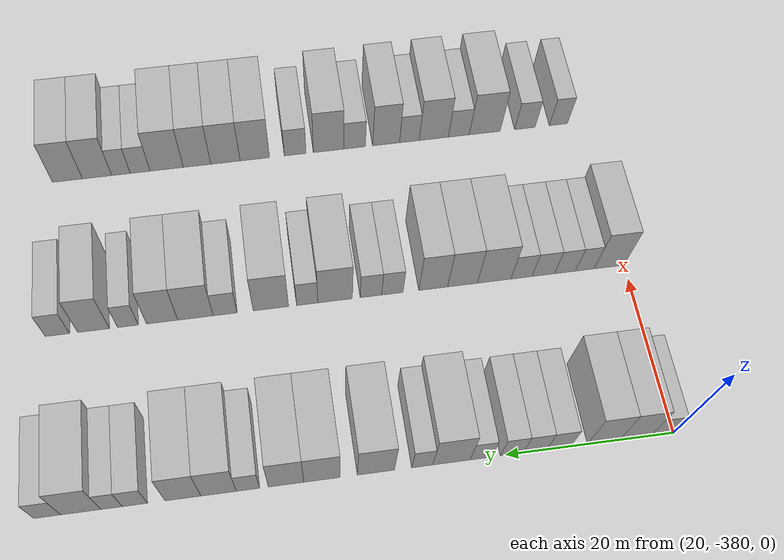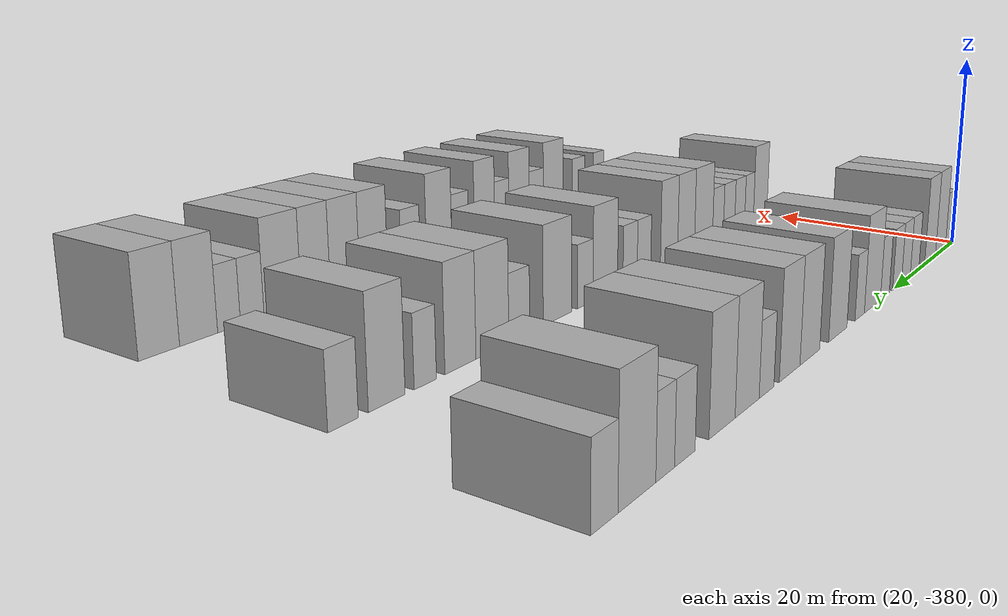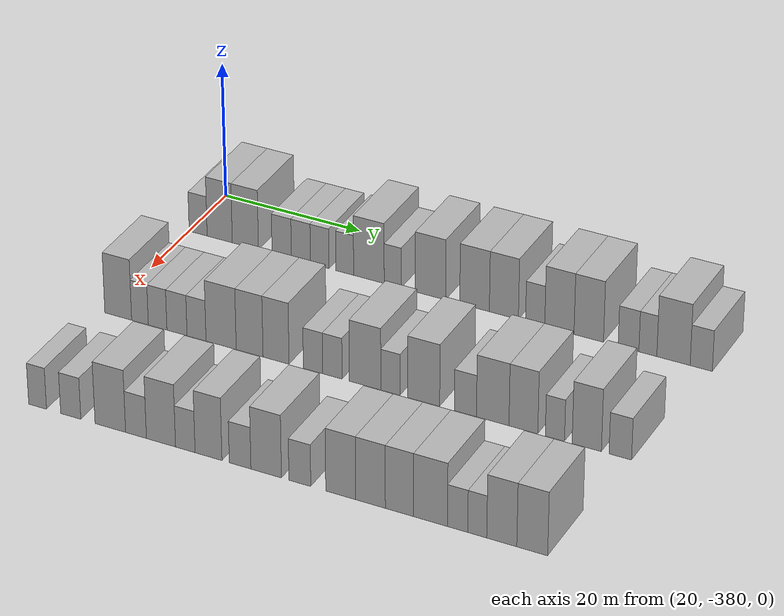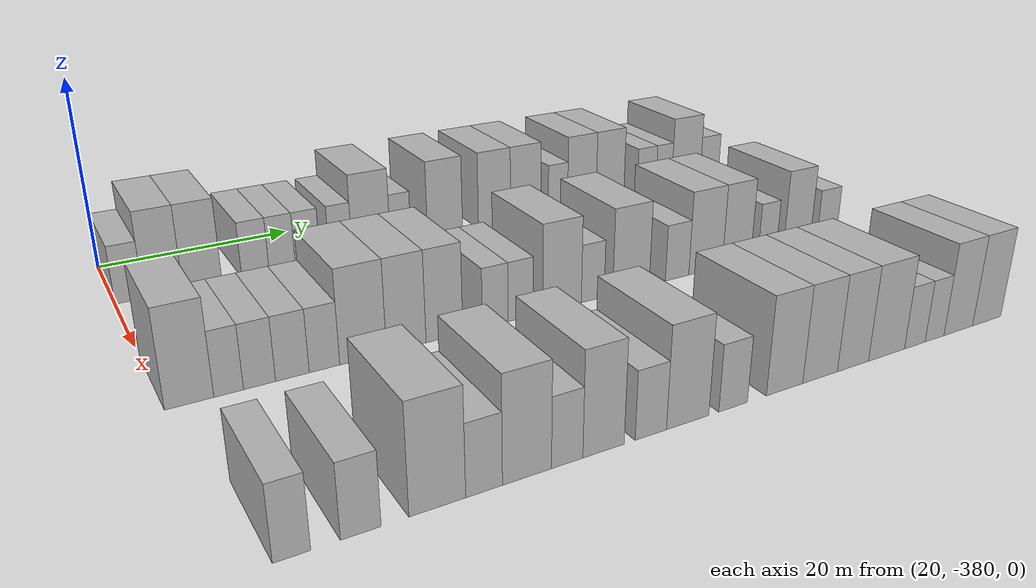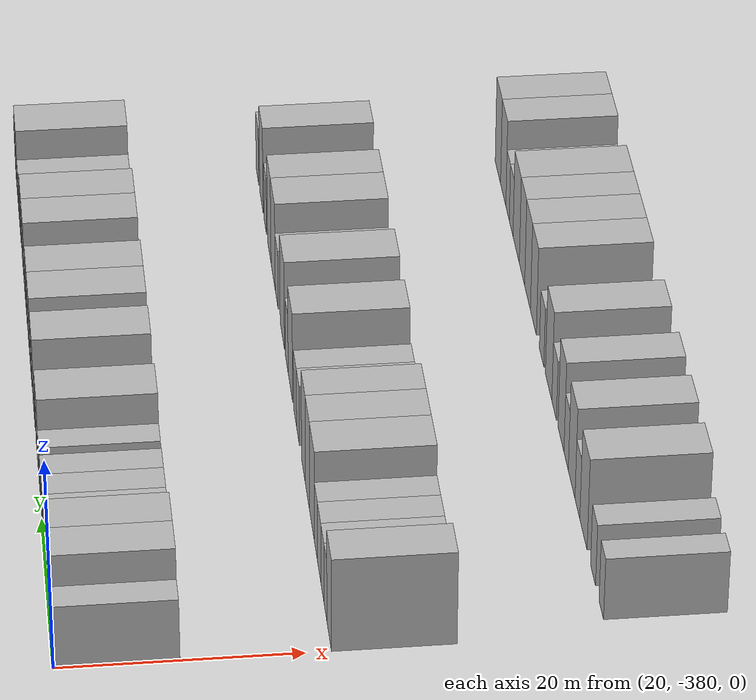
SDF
<sdf version="1.6">
 <world name="default">
  <model name="building_1">
   <static>1</static>
   <pose>25.0000 -378.6600 0 0.000000 0.000000 0.000000</pose>
   <link name="link">
    <pose>0 0 3.00 0 0 0</pose>
    <collision name="collision"><geometry><box><size>10.0000 2.6799 6.0000</size></box></geometry></collision>
    <visual name="visual">
     <cast_shadows>0</cast_shadows>
     <geometry><box><size>10.0000 2.6799 6.0000</size></box></geometry>
     <material>
      <script>
       <uri>model://HANNAS_wall/materials/scripts</uri>
       <uri>model://HANNAS_wall/materials/textures</uri>
       <name>vrc/HANNAS_wall</name>
      </script>
     </material>
    </visual>
   </link>
  </model>
  <model name="building_2">
   <static>1</static>
   <pose>25.0000 -375.4495 0 0.000000 0.000000 0.000000</pose>
   <link name="link">
    <pose>0 0 4.50 0 0 0</pose>
    <collision name="collision"><geometry><box><size>10.0000 3.7410 9.0000</size></box></geometry></collision>
    <visual name="visual">
     <cast_shadows>0</cast_shadows>
     <geometry><box><size>10.0000 3.7410 9.0000</size></box></geometry>
     <material>
      <script>
       <uri>model://HANNAS_wall/materials/scripts</uri>
       <uri>model://HANNAS_wall/materials/textures</uri>
       <name>vrc/HANNAS_wall</name>
      </script>
     </material>
    </visual>
   </link>
  </model>
  <model name="building_3">
   <static>1</static>
   <pose>25.0000 -371.6443 0 0.000000 0.000000 0.000000</pose>
   <link name="link">
    <pose>0 0 4.50 0 0 0</pose>
    <collision name="collision"><geometry><box><size>10.0000 3.8694 9.0000</size></box></geometry></collision>
    <visual name="visual">
     <cast_shadows>0</cast_shadows>
     <geometry><box><size>10.0000 3.8694 9.0000</size></box></geometry>
     <material>
      <script>
       <uri>model://HANNAS_wall/materials/scripts</uri>
       <uri>model://HANNAS_wall/materials/textures</uri>
       <name>vrc/HANNAS_wall</name>
      </script>
     </material>
    </visual>
   </link>
  </model>
  <model name="building_4">
   <static>1</static>
   <pose>25.0000 -366.2913 0 0.000000 0.000000 0.000000</pose>
   <link name="link">
    <pose>0 0 3.00 0 0 0</pose>
    <collision name="collision"><geometry><box><size>10.0000 2.8366 6.0000</size></box></geometry></collision>
    <visual name="visual">
     <cast_shadows>0</cast_shadows>
     <geometry><box><size>10.0000 2.8366 6.0000</size></box></geometry>
     <material>
      <script>
       <uri>model://HANNAS_wall/materials/scripts</uri>
       <uri>model://HANNAS_wall/materials/textures</uri>
       <name>vrc/HANNAS_wall</name>
      </script>
     </material>
    </visual>
   </link>
  </model>
  <model name="building_5">
   <static>1</static>
   <pose>25.0000 -363.4804 0 0.000000 0.000000 0.000000</pose>
   <link name="link">
    <pose>0 0 3.00 0 0 0</pose>
    <collision name="collision"><geometry><box><size>10.0000 2.7850 6.0000</size></box></geometry></collision>
    <visual name="visual">
     <cast_shadows>0</cast_shadows>
     <geometry><box><size>10.0000 2.7850 6.0000</size></box></geometry>
     <material>
      <script>
       <uri>model://HANNAS_wall/materials/scripts</uri>
       <uri>model://HANNAS_wall/materials/textures</uri>
       <name>vrc/HANNAS_wall</name>
      </script>
     </material>
    </visual>
   </link>
  </model>
  <model name="building_6">
   <static>1</static>
   <pose>25.0000 -360.7322 0 0.000000 0.000000 0.000000</pose>
   <link name="link">
    <pose>0 0 3.00 0 0 0</pose>
    <collision name="collision"><geometry><box><size>10.0000 2.7115 6.0000</size></box></geometry></collision>
    <visual name="visual">
     <cast_shadows>0</cast_shadows>
     <geometry><box><size>10.0000 2.7115 6.0000</size></box></geometry>
     <material>
      <script>
       <uri>model://HANNAS_wall/materials/scripts</uri>
       <uri>model://HANNAS_wall/materials/textures</uri>
       <name>vrc/HANNAS_wall</name>
      </script>
     </material>
    </visual>
   </link>
  </model>
  <model name="building_7">
   <static>1</static>
   <pose>25.0000 -357.1017 0 0.000000 0.000000 0.000000</pose>
   <link name="link">
    <pose>0 0 3.00 0 0 0</pose>
    <collision name="collision"><geometry><box><size>10.0000 2.5496 6.0000</size></box></geometry></collision>
    <visual name="visual">
     <cast_shadows>0</cast_shadows>
     <geometry><box><size>10.0000 2.5496 6.0000</size></box></geometry>
     <material>
      <script>
       <uri>model://HANNAS_wall/materials/scripts</uri>
       <uri>model://HANNAS_wall/materials/textures</uri>
       <name>vrc/HANNAS_wall</name>
      </script>
     </material>
    </visual>
   </link>
  </model>
  <model name="building_8">
   <static>1</static>
   <pose>25.0000 -353.6264 0 0.000000 0.000000 0.000000</pose>
   <link name="link">
    <pose>0 0 4.50 0 0 0</pose>
    <collision name="collision"><geometry><box><size>10.0000 4.4009 9.0000</size></box></geometry></collision>
    <visual name="visual">
     <cast_shadows>0</cast_shadows>
     <geometry><box><size>10.0000 4.4009 9.0000</size></box></geometry>
     <material>
      <script>
       <uri>model://HANNAS_wall/materials/scripts</uri>
       <uri>model://HANNAS_wall/materials/textures</uri>
       <name>vrc/HANNAS_wall</name>
      </script>
     </material>
    </visual>
   </link>
  </model>
  <model name="building_9">
   <static>1</static>
   <pose>25.0000 -350.2114 0 0.000000 0.000000 0.000000</pose>
   <link name="link">
    <pose>0 0 3.00 0 0 0</pose>
    <collision name="collision"><geometry><box><size>10.0000 2.4290 6.0000</size></box></geometry></collision>
    <visual name="visual">
     <cast_shadows>0</cast_shadows>
     <geometry><box><size>10.0000 2.4290 6.0000</size></box></geometry>
     <material>
      <script>
       <uri>model://HANNAS_wall/materials/scripts</uri>
       <uri>model://HANNAS_wall/materials/textures</uri>
       <name>vrc/HANNAS_wall</name>
      </script>
     </material>
    </visual>
   </link>
  </model>
  <model name="building_10">
   <static>1</static>
   <pose>25.0000 -344.8356 0 0.000000 0.000000 0.000000</pose>
   <link name="link">
    <pose>0 0 4.50 0 0 0</pose>
    <collision name="collision"><geometry><box><size>10.0000 4.3227 9.0000</size></box></geometry></collision>
    <visual name="visual">
     <cast_shadows>0</cast_shadows>
     <geometry><box><size>10.0000 4.3227 9.0000</size></box></geometry>
     <material>
      <script>
       <uri>model://HANNAS_wall/materials/scripts</uri>
       <uri>model://HANNAS_wall/materials/textures</uri>
       <name>vrc/HANNAS_wall</name>
      </script>
     </material>
    </visual>
   </link>
  </model>
  <model name="building_11">
   <static>1</static>
   <pose>25.0000 -338.5897 0 0.000000 0.000000 0.000000</pose>
   <link name="link">
    <pose>0 0 4.50 0 0 0</pose>
    <collision name="collision"><geometry><box><size>10.0000 4.1690 9.0000</size></box></geometry></collision>
    <visual name="visual">
     <cast_shadows>0</cast_shadows>
     <geometry><box><size>10.0000 4.1690 9.0000</size></box></geometry>
     <material>
      <script>
       <uri>model://HANNAS_wall/materials/scripts</uri>
       <uri>model://HANNAS_wall/materials/textures</uri>
       <name>vrc/HANNAS_wall</name>
      </script>
     </material>
    </visual>
   </link>
  </model>
  <model name="building_12">
   <static>1</static>
   <pose>25.0000 -334.4752 0 0.000000 0.000000 0.000000</pose>
   <link name="link">
    <pose>0 0 4.50 0 0 0</pose>
    <collision name="collision"><geometry><box><size>10.0000 4.0601 9.0000</size></box></geometry></collision>
    <visual name="visual">
     <cast_shadows>0</cast_shadows>
     <geometry><box><size>10.0000 4.0601 9.0000</size></box></geometry>
     <material>
      <script>
       <uri>model://HANNAS_wall/materials/scripts</uri>
       <uri>model://HANNAS_wall/materials/textures</uri>
       <name>vrc/HANNAS_wall</name>
      </script>
     </material>
    </visual>
   </link>
  </model>
  <model name="building_13">
   <static>1</static>
   <pose>25.0000 -330.1138 0 0.000000 0.000000 0.000000</pose>
   <link name="link">
    <pose>0 0 3.00 0 0 0</pose>
    <collision name="collision"><geometry><box><size>10.0000 2.6627 6.0000</size></box></geometry></collision>
    <visual name="visual">
     <cast_shadows>0</cast_shadows>
     <geometry><box><size>10.0000 2.6627 6.0000</size></box></geometry>
     <material>
      <script>
       <uri>model://HANNAS_wall/materials/scripts</uri>
       <uri>model://HANNAS_wall/materials/textures</uri>
       <name>vrc/HANNAS_wall</name>
      </script>
     </material>
    </visual>
   </link>
  </model>
  <model name="building_14">
   <static>1</static>
   <pose>25.0000 -326.7637 0 0.000000 0.000000 0.000000</pose>
   <link name="link">
    <pose>0 0 4.50 0 0 0</pose>
    <collision name="collision"><geometry><box><size>10.0000 4.0375 9.0000</size></box></geometry></collision>
    <visual name="visual">
     <cast_shadows>0</cast_shadows>
     <geometry><box><size>10.0000 4.0375 9.0000</size></box></geometry>
     <material>
      <script>
       <uri>model://HANNAS_wall/materials/scripts</uri>
       <uri>model://HANNAS_wall/materials/textures</uri>
       <name>vrc/HANNAS_wall</name>
      </script>
     </material>
    </visual>
   </link>
  </model>
  <model name="building_15">
   <static>1</static>
   <pose>25.0000 -322.7185 0 0.000000 0.000000 0.000000</pose>
   <link name="link">
    <pose>0 0 4.50 0 0 0</pose>
    <collision name="collision"><geometry><box><size>10.0000 4.0528 9.0000</size></box></geometry></collision>
    <visual name="visual">
     <cast_shadows>0</cast_shadows>
     <geometry><box><size>10.0000 4.0528 9.0000</size></box></geometry>
     <material>
      <script>
       <uri>model://HANNAS_wall/materials/scripts</uri>
       <uri>model://HANNAS_wall/materials/textures</uri>
       <name>vrc/HANNAS_wall</name>
      </script>
     </material>
    </visual>
   </link>
  </model>
  <model name="building_16">
   <static>1</static>
   <pose>25.0000 -317.2784 0 0.000000 0.000000 0.000000</pose>
   <link name="link">
    <pose>0 0 3.00 0 0 0</pose>
    <collision name="collision"><geometry><box><size>10.0000 2.8274 6.0000</size></box></geometry></collision>
    <visual name="visual">
     <cast_shadows>0</cast_shadows>
     <geometry><box><size>10.0000 2.8274 6.0000</size></box></geometry>
     <material>
      <script>
       <uri>model://HANNAS_wall/materials/scripts</uri>
       <uri>model://HANNAS_wall/materials/textures</uri>
       <name>vrc/HANNAS_wall</name>
      </script>
     </material>
    </visual>
   </link>
  </model>
  <model name="building_17">
   <static>1</static>
   <pose>25.0000 -314.6513 0 0.000000 0.000000 0.000000</pose>
   <link name="link">
    <pose>0 0 3.00 0 0 0</pose>
    <collision name="collision"><geometry><box><size>10.0000 2.4268 6.0000</size></box></geometry></collision>
    <visual name="visual">
     <cast_shadows>0</cast_shadows>
     <geometry><box><size>10.0000 2.4268 6.0000</size></box></geometry>
     <material>
      <script>
       <uri>model://HANNAS_wall/materials/scripts</uri>
       <uri>model://HANNAS_wall/materials/textures</uri>
       <name>vrc/HANNAS_wall</name>
      </script>
     </material>
    </visual>
   </link>
  </model>
  <model name="building_18">
   <static>1</static>
   <pose>25.0000 -311.1901 0 0.000000 0.000000 0.000000</pose>
   <link name="link">
    <pose>0 0 4.50 0 0 0</pose>
    <collision name="collision"><geometry><box><size>10.0000 4.4955 9.0000</size></box></geometry></collision>
    <visual name="visual">
     <cast_shadows>0</cast_shadows>
     <geometry><box><size>10.0000 4.4955 9.0000</size></box></geometry>
     <material>
      <script>
       <uri>model://HANNAS_wall/materials/scripts</uri>
       <uri>model://HANNAS_wall/materials/textures</uri>
       <name>vrc/HANNAS_wall</name>
      </script>
     </material>
    </visual>
   </link>
  </model>
  <model name="building_19">
   <static>1</static>
   <pose>25.0000 -307.4517 0 0.000000 0.000000 0.000000</pose>
   <link name="link">
    <pose>0 0 3.00 0 0 0</pose>
    <collision name="collision"><geometry><box><size>10.0000 2.9812 6.0000</size></box></geometry></collision>
    <visual name="visual">
     <cast_shadows>0</cast_shadows>
     <geometry><box><size>10.0000 2.9812 6.0000</size></box></geometry>
     <material>
      <script>
       <uri>model://HANNAS_wall/materials/scripts</uri>
       <uri>model://HANNAS_wall/materials/textures</uri>
       <name>vrc/HANNAS_wall</name>
      </script>
     </material>
    </visual>
   </link>
  </model>
  <model name="building_180">
   <static>1</static>
   <pose>47.0000 -378.0485 0 0.000000 0.000000 0.000000</pose>
   <link name="link">
    <pose>0 0 4.50 0 0 0</pose>
    <collision name="collision"><geometry><box><size>10.0000 3.9031 9.0000</size></box></geometry></collision>
    <visual name="visual">
     <cast_shadows>0</cast_shadows>
     <geometry><box><size>10.0000 3.9031 9.0000</size></box></geometry>
     <material>
      <script>
       <uri>model://HANNAS_wall/materials/scripts</uri>
       <uri>model://HANNAS_wall/materials/textures</uri>
       <name>vrc/HANNAS_wall</name>
      </script>
     </material>
    </visual>
   </link>
  </model>
  <model name="building_181">
   <static>1</static>
   <pose>47.0000 -374.8877 0 0.000000 0.000000 0.000000</pose>
   <link name="link">
    <pose>0 0 3.00 0 0 0</pose>
    <collision name="collision"><geometry><box><size>10.0000 2.4185 6.0000</size></box></geometry></collision>
    <visual name="visual">
     <cast_shadows>0</cast_shadows>
     <geometry><box><size>10.0000 2.4185 6.0000</size></box></geometry>
     <material>
      <script>
       <uri>model://HANNAS_wall/materials/scripts</uri>
       <uri>model://HANNAS_wall/materials/textures</uri>
       <name>vrc/HANNAS_wall</name>
      </script>
     </material>
    </visual>
   </link>
  </model>
  <model name="building_182">
   <static>1</static>
   <pose>47.0000 -372.3358 0 0.000000 0.000000 0.000000</pose>
   <link name="link">
    <pose>0 0 3.00 0 0 0</pose>
    <collision name="collision"><geometry><box><size>10.0000 2.6852 6.0000</size></box></geometry></collision>
    <visual name="visual">
     <cast_shadows>0</cast_shadows>
     <geometry><box><size>10.0000 2.6852 6.0000</size></box></geometry>
     <material>
      <script>
       <uri>model://HANNAS_wall/materials/scripts</uri>
       <uri>model://HANNAS_wall/materials/textures</uri>
       <name>vrc/HANNAS_wall</name>
      </script>
     </material>
    </visual>
   </link>
  </model>
  <model name="building_183">
   <static>1</static>
   <pose>47.0000 -369.5427 0 0.000000 0.000000 0.000000</pose>
   <link name="link">
    <pose>0 0 3.00 0 0 0</pose>
    <collision name="collision"><geometry><box><size>10.0000 2.9011 6.0000</size></box></geometry></collision>
    <visual name="visual">
     <cast_shadows>0</cast_shadows>
     <geometry><box><size>10.0000 2.9011 6.0000</size></box></geometry>
     <material>
      <script>
       <uri>model://HANNAS_wall/materials/scripts</uri>
       <uri>model://HANNAS_wall/materials/textures</uri>
       <name>vrc/HANNAS_wall</name>
      </script>
     </material>
    </visual>
   </link>
  </model>
  <model name="building_184">
   <static>1</static>
   <pose>47.0000 -366.7340 0 0.000000 0.000000 0.000000</pose>
   <link name="link">
    <pose>0 0 3.00 0 0 0</pose>
    <collision name="collision"><geometry><box><size>10.0000 2.7163 6.0000</size></box></geometry></collision>
    <visual name="visual">
     <cast_shadows>0</cast_shadows>
     <geometry><box><size>10.0000 2.7163 6.0000</size></box></geometry>
     <material>
      <script>
       <uri>model://HANNAS_wall/materials/scripts</uri>
       <uri>model://HANNAS_wall/materials/textures</uri>
       <name>vrc/HANNAS_wall</name>
      </script>
     </material>
    </visual>
   </link>
  </model>
  <model name="building_185">
   <static>1</static>
   <pose>47.0000 -363.2238 0 0.000000 0.000000 0.000000</pose>
   <link name="link">
    <pose>0 0 4.50 0 0 0</pose>
    <collision name="collision"><geometry><box><size>10.0000 4.3041 9.0000</size></box></geometry></collision>
    <visual name="visual">
     <cast_shadows>0</cast_shadows>
     <geometry><box><size>10.0000 4.3041 9.0000</size></box></geometry>
     <material>
      <script>
       <uri>model://HANNAS_wall/materials/scripts</uri>
       <uri>model://HANNAS_wall/materials/textures</uri>
       <name>vrc/HANNAS_wall</name>
      </script>
     </material>
    </visual>
   </link>
  </model>
  <model name="building_186">
   <static>1</static>
   <pose>47.0000 -359.1724 0 0.000000 0.000000 0.000000</pose>
   <link name="link">
    <pose>0 0 4.50 0 0 0</pose>
    <collision name="collision"><geometry><box><size>10.0000 3.7987 9.0000</size></box></geometry></collision>
    <visual name="visual">
     <cast_shadows>0</cast_shadows>
     <geometry><box><size>10.0000 3.7987 9.0000</size></box></geometry>
     <material>
      <script>
       <uri>model://HANNAS_wall/materials/scripts</uri>
       <uri>model://HANNAS_wall/materials/textures</uri>
       <name>vrc/HANNAS_wall</name>
      </script>
     </material>
    </visual>
   </link>
  </model>
  <model name="building_187">
   <static>1</static>
   <pose>47.0000 -355.4436 0 0.000000 0.000000 0.000000</pose>
   <link name="link">
    <pose>0 0 4.50 0 0 0</pose>
    <collision name="collision"><geometry><box><size>10.0000 3.6590 9.0000</size></box></geometry></collision>
    <visual name="visual">
     <cast_shadows>0</cast_shadows>
     <geometry><box><size>10.0000 3.6590 9.0000</size></box></geometry>
     <material>
      <script>
       <uri>model://HANNAS_wall/materials/scripts</uri>
       <uri>model://HANNAS_wall/materials/textures</uri>
       <name>vrc/HANNAS_wall</name>
      </script>
     </material>
    </visual>
   </link>
  </model>
  <model name="building_188">
   <static>1</static>
   <pose>47.0000 -350.2675 0 0.000000 0.000000 0.000000</pose>
   <link name="link">
    <pose>0 0 3.00 0 0 0</pose>
    <collision name="collision"><geometry><box><size>10.0000 2.6932 6.0000</size></box></geometry></collision>
    <visual name="visual">
     <cast_shadows>0</cast_shadows>
     <geometry><box><size>10.0000 2.6932 6.0000</size></box></geometry>
     <material>
      <script>
       <uri>model://HANNAS_wall/materials/scripts</uri>
       <uri>model://HANNAS_wall/materials/textures</uri>
       <name>vrc/HANNAS_wall</name>
      </script>
     </material>
    </visual>
   </link>
  </model>
  <model name="building_189">
   <static>1</static>
   <pose>47.0000 -347.5638 0 0.000000 0.000000 0.000000</pose>
   <link name="link">
    <pose>0 0 3.00 0 0 0</pose>
    <collision name="collision"><geometry><box><size>10.0000 2.7143 6.0000</size></box></geometry></collision>
    <visual name="visual">
     <cast_shadows>0</cast_shadows>
     <geometry><box><size>10.0000 2.7143 6.0000</size></box></geometry>
     <material>
      <script>
       <uri>model://HANNAS_wall/materials/scripts</uri>
       <uri>model://HANNAS_wall/materials/textures</uri>
       <name>vrc/HANNAS_wall</name>
      </script>
     </material>
    </visual>
   </link>
  </model>
  <model name="building_190">
   <static>1</static>
   <pose>47.0000 -343.0382 0 0.000000 0.000000 0.000000</pose>
   <link name="link">
    <pose>0 0 4.50 0 0 0</pose>
    <collision name="collision"><geometry><box><size>10.0000 4.3369 9.0000</size></box></geometry></collision>
    <visual name="visual">
     <cast_shadows>0</cast_shadows>
     <geometry><box><size>10.0000 4.3369 9.0000</size></box></geometry>
     <material>
      <script>
       <uri>model://HANNAS_wall/materials/scripts</uri>
       <uri>model://HANNAS_wall/materials/textures</uri>
       <name>vrc/HANNAS_wall</name>
      </script>
     </material>
    </visual>
   </link>
  </model>
  <model name="building_191">
   <static>1</static>
   <pose>47.0000 -339.5434 0 0.000000 0.000000 0.000000</pose>
   <link name="link">
    <pose>0 0 3.00 0 0 0</pose>
    <collision name="collision"><geometry><box><size>10.0000 2.6527 6.0000</size></box></geometry></collision>
    <visual name="visual">
     <cast_shadows>0</cast_shadows>
     <geometry><box><size>10.0000 2.6527 6.0000</size></box></geometry>
     <material>
      <script>
       <uri>model://HANNAS_wall/materials/scripts</uri>
       <uri>model://HANNAS_wall/materials/textures</uri>
       <name>vrc/HANNAS_wall</name>
      </script>
     </material>
    </visual>
   </link>
  </model>
  <model name="building_192">
   <static>1</static>
   <pose>47.0000 -335.0168 0 0.000000 0.000000 0.000000</pose>
   <link name="link">
    <pose>0 0 4.50 0 0 0</pose>
    <collision name="collision"><geometry><box><size>10.0000 4.4006 9.0000</size></box></geometry></collision>
    <visual name="visual">
     <cast_shadows>0</cast_shadows>
     <geometry><box><size>10.0000 4.4006 9.0000</size></box></geometry>
     <material>
      <script>
       <uri>model://HANNAS_wall/materials/scripts</uri>
       <uri>model://HANNAS_wall/materials/textures</uri>
       <name>vrc/HANNAS_wall</name>
      </script>
     </material>
    </visual>
   </link>
  </model>
  <model name="building_193">
   <static>1</static>
   <pose>47.0000 -329.3317 0 0.000000 0.000000 0.000000</pose>
   <link name="link">
    <pose>0 0 3.00 0 0 0</pose>
    <collision name="collision"><geometry><box><size>10.0000 2.9695 6.0000</size></box></geometry></collision>
    <visual name="visual">
     <cast_shadows>0</cast_shadows>
     <geometry><box><size>10.0000 2.9695 6.0000</size></box></geometry>
     <material>
      <script>
       <uri>model://HANNAS_wall/materials/scripts</uri>
       <uri>model://HANNAS_wall/materials/textures</uri>
       <name>vrc/HANNAS_wall</name>
      </script>
     </material>
    </visual>
   </link>
  </model>
  <model name="building_194">
   <static>1</static>
   <pose>47.0000 -325.6598 0 0.000000 0.000000 0.000000</pose>
   <link name="link">
    <pose>0 0 4.50 0 0 0</pose>
    <collision name="collision"><geometry><box><size>10.0000 4.3744 9.0000</size></box></geometry></collision>
    <visual name="visual">
     <cast_shadows>0</cast_shadows>
     <geometry><box><size>10.0000 4.3744 9.0000</size></box></geometry>
     <material>
      <script>
       <uri>model://HANNAS_wall/materials/scripts</uri>
       <uri>model://HANNAS_wall/materials/textures</uri>
       <name>vrc/HANNAS_wall</name>
      </script>
     </material>
    </visual>
   </link>
  </model>
  <model name="building_195">
   <static>1</static>
   <pose>47.0000 -321.5493 0 0.000000 0.000000 0.000000</pose>
   <link name="link">
    <pose>0 0 4.50 0 0 0</pose>
    <collision name="collision"><geometry><box><size>10.0000 3.8466 9.0000</size></box></geometry></collision>
    <visual name="visual">
     <cast_shadows>0</cast_shadows>
     <geometry><box><size>10.0000 3.8466 9.0000</size></box></geometry>
     <material>
      <script>
       <uri>model://HANNAS_wall/materials/scripts</uri>
       <uri>model://HANNAS_wall/materials/textures</uri>
       <name>vrc/HANNAS_wall</name>
      </script>
     </material>
    </visual>
   </link>
  </model>
  <model name="building_196">
   <static>1</static>
   <pose>47.0000 -317.3513 0 0.000000 0.000000 0.000000</pose>
   <link name="link">
    <pose>0 0 3.00 0 0 0</pose>
    <collision name="collision"><geometry><box><size>10.0000 2.5493 6.0000</size></box></geometry></collision>
    <visual name="visual">
     <cast_shadows>0</cast_shadows>
     <geometry><box><size>10.0000 2.5493 6.0000</size></box></geometry>
     <material>
      <script>
       <uri>model://HANNAS_wall/materials/scripts</uri>
       <uri>model://HANNAS_wall/materials/textures</uri>
       <name>vrc/HANNAS_wall</name>
      </script>
     </material>
    </visual>
   </link>
  </model>
  <model name="building_197">
   <static>1</static>
   <pose>47.0000 -313.1474 0 0.000000 0.000000 0.000000</pose>
   <link name="link">
    <pose>0 0 4.50 0 0 0</pose>
    <collision name="collision"><geometry><box><size>10.0000 3.8585 9.0000</size></box></geometry></collision>
    <visual name="visual">
     <cast_shadows>0</cast_shadows>
     <geometry><box><size>10.0000 3.8585 9.0000</size></box></geometry>
     <material>
      <script>
       <uri>model://HANNAS_wall/materials/scripts</uri>
       <uri>model://HANNAS_wall/materials/textures</uri>
       <name>vrc/HANNAS_wall</name>
      </script>
     </material>
    </visual>
   </link>
  </model>
  <model name="building_198">
   <static>1</static>
   <pose>47.0000 -308.7451 0 0.000000 0.000000 0.000000</pose>
   <link name="link">
    <pose>0 0 3.00 0 0 0</pose>
    <collision name="collision"><geometry><box><size>10.0000 2.9461 6.0000</size></box></geometry></collision>
    <visual name="visual">
     <cast_shadows>0</cast_shadows>
     <geometry><box><size>10.0000 2.9461 6.0000</size></box></geometry>
     <material>
      <script>
       <uri>model://HANNAS_wall/materials/scripts</uri>
       <uri>model://HANNAS_wall/materials/textures</uri>
       <name>vrc/HANNAS_wall</name>
      </script>
     </material>
    </visual>
   </link>
  </model>
  <model name="building_365">
   <static>1</static>
   <pose>69.0000 -376.7377 0 0.000000 0.000000 0.000000</pose>
   <link name="link">
    <pose>0 0 3.00 0 0 0</pose>
    <collision name="collision"><geometry><box><size>10.0000 2.5246 6.0000</size></box></geometry></collision>
    <visual name="visual">
     <cast_shadows>0</cast_shadows>
     <geometry><box><size>10.0000 2.5246 6.0000</size></box></geometry>
     <material>
      <script>
       <uri>model://HANNAS_wall/materials/scripts</uri>
       <uri>model://HANNAS_wall/materials/textures</uri>
       <name>vrc/HANNAS_wall</name>
      </script>
     </material>
    </visual>
   </link>
  </model>
  <model name="building_366">
   <static>1</static>
   <pose>69.0000 -372.0531 0 0.000000 0.000000 0.000000</pose>
   <link name="link">
    <pose>0 0 3.00 0 0 0</pose>
    <collision name="collision"><geometry><box><size>10.0000 2.8445 6.0000</size></box></geometry></collision>
    <visual name="visual">
     <cast_shadows>0</cast_shadows>
     <geometry><box><size>10.0000 2.8445 6.0000</size></box></geometry>
     <material>
      <script>
       <uri>model://HANNAS_wall/materials/scripts</uri>
       <uri>model://HANNAS_wall/materials/textures</uri>
       <name>vrc/HANNAS_wall</name>
      </script>
     </material>
    </visual>
   </link>
  </model>
  <model name="building_367">
   <static>1</static>
   <pose>69.0000 -366.4945 0 0.000000 0.000000 0.000000</pose>
   <link name="link">
    <pose>0 0 4.50 0 0 0</pose>
    <collision name="collision"><geometry><box><size>10.0000 4.2726 9.0000</size></box></geometry></collision>
    <visual name="visual">
     <cast_shadows>0</cast_shadows>
     <geometry><box><size>10.0000 4.2726 9.0000</size></box></geometry>
     <material>
      <script>
       <uri>model://HANNAS_wall/materials/scripts</uri>
       <uri>model://HANNAS_wall/materials/textures</uri>
       <name>vrc/HANNAS_wall</name>
      </script>
     </material>
    </visual>
   </link>
  </model>
  <model name="building_368">
   <static>1</static>
   <pose>69.0000 -362.9145 0 0.000000 0.000000 0.000000</pose>
   <link name="link">
    <pose>0 0 3.00 0 0 0</pose>
    <collision name="collision"><geometry><box><size>10.0000 2.8875 6.0000</size></box></geometry></collision>
    <visual name="visual">
     <cast_shadows>0</cast_shadows>
     <geometry><box><size>10.0000 2.8875 6.0000</size></box></geometry>
     <material>
      <script>
       <uri>model://HANNAS_wall/materials/scripts</uri>
       <uri>model://HANNAS_wall/materials/textures</uri>
       <name>vrc/HANNAS_wall</name>
      </script>
     </material>
    </visual>
   </link>
  </model>
  <model name="building_369">
   <static>1</static>
   <pose>69.0000 -359.4589 0 0.000000 0.000000 0.000000</pose>
   <link name="link">
    <pose>0 0 4.50 0 0 0</pose>
    <collision name="collision"><geometry><box><size>10.0000 4.0236 9.0000</size></box></geometry></collision>
    <visual name="visual">
     <cast_shadows>0</cast_shadows>
     <geometry><box><size>10.0000 4.0236 9.0000</size></box></geometry>
     <material>
      <script>
       <uri>model://HANNAS_wall/materials/scripts</uri>
       <uri>model://HANNAS_wall/materials/textures</uri>
       <name>vrc/HANNAS_wall</name>
      </script>
     </material>
    </visual>
   </link>
  </model>
  <model name="building_370">
   <static>1</static>
   <pose>69.0000 -356.1050 0 0.000000 0.000000 0.000000</pose>
   <link name="link">
    <pose>0 0 3.00 0 0 0</pose>
    <collision name="collision"><geometry><box><size>10.0000 2.6841 6.0000</size></box></geometry></collision>
    <visual name="visual">
     <cast_shadows>0</cast_shadows>
     <geometry><box><size>10.0000 2.6841 6.0000</size></box></geometry>
     <material>
      <script>
       <uri>model://HANNAS_wall/materials/scripts</uri>
       <uri>model://HANNAS_wall/materials/textures</uri>
       <name>vrc/HANNAS_wall</name>
      </script>
     </material>
    </visual>
   </link>
  </model>
  <model name="building_371">
   <static>1</static>
   <pose>69.0000 -352.9255 0 0.000000 0.000000 0.000000</pose>
   <link name="link">
    <pose>0 0 4.50 0 0 0</pose>
    <collision name="collision"><geometry><box><size>10.0000 3.6749 9.0000</size></box></geometry></collision>
    <visual name="visual">
     <cast_shadows>0</cast_shadows>
     <geometry><box><size>10.0000 3.6749 9.0000</size></box></geometry>
     <material>
      <script>
       <uri>model://HANNAS_wall/materials/scripts</uri>
       <uri>model://HANNAS_wall/materials/textures</uri>
       <name>vrc/HANNAS_wall</name>
      </script>
     </material>
    </visual>
   </link>
  </model>
  <model name="building_372">
   <static>1</static>
   <pose>69.0000 -348.6224 0 0.000000 0.000000 0.000000</pose>
   <link name="link">
    <pose>0 0 3.00 0 0 0</pose>
    <collision name="collision"><geometry><box><size>10.0000 2.9312 6.0000</size></box></geometry></collision>
    <visual name="visual">
     <cast_shadows>0</cast_shadows>
     <geometry><box><size>10.0000 2.9312 6.0000</size></box></geometry>
     <material>
      <script>
       <uri>model://HANNAS_wall/materials/scripts</uri>
       <uri>model://HANNAS_wall/materials/textures</uri>
       <name>vrc/HANNAS_wall</name>
      </script>
     </material>
    </visual>
   </link>
  </model>
  <model name="building_373">
   <static>1</static>
   <pose>69.0000 -345.0953 0 0.000000 0.000000 0.000000</pose>
   <link name="link">
    <pose>0 0 4.50 0 0 0</pose>
    <collision name="collision"><geometry><box><size>10.0000 4.1230 9.0000</size></box></geometry></collision>
    <visual name="visual">
     <cast_shadows>0</cast_shadows>
     <geometry><box><size>10.0000 4.1230 9.0000</size></box></geometry>
     <material>
      <script>
       <uri>model://HANNAS_wall/materials/scripts</uri>
       <uri>model://HANNAS_wall/materials/textures</uri>
       <name>vrc/HANNAS_wall</name>
      </script>
     </material>
    </visual>
   </link>
  </model>
  <model name="building_374">
   <static>1</static>
   <pose>69.0000 -340.5703 0 0.000000 0.000000 0.000000</pose>
   <link name="link">
    <pose>0 0 3.00 0 0 0</pose>
    <collision name="collision"><geometry><box><size>10.0000 2.9270 6.0000</size></box></geometry></collision>
    <visual name="visual">
     <cast_shadows>0</cast_shadows>
     <geometry><box><size>10.0000 2.9270 6.0000</size></box></geometry>
     <material>
      <script>
       <uri>model://HANNAS_wall/materials/scripts</uri>
       <uri>model://HANNAS_wall/materials/textures</uri>
       <name>vrc/HANNAS_wall</name>
      </script>
     </material>
    </visual>
   </link>
  </model>
  <model name="building_375">
   <static>1</static>
   <pose>69.0000 -335.1281 0 0.000000 0.000000 0.000000</pose>
   <link name="link">
    <pose>0 0 4.50 0 0 0</pose>
    <collision name="collision"><geometry><box><size>10.0000 3.9575 9.0000</size></box></geometry></collision>
    <visual name="visual">
     <cast_shadows>0</cast_shadows>
     <geometry><box><size>10.0000 3.9575 9.0000</size></box></geometry>
     <material>
      <script>
       <uri>model://HANNAS_wall/materials/scripts</uri>
       <uri>model://HANNAS_wall/materials/textures</uri>
       <name>vrc/HANNAS_wall</name>
      </script>
     </material>
    </visual>
   </link>
  </model>
  <model name="building_376">
   <static>1</static>
   <pose>69.0000 -331.1859 0 0.000000 0.000000 0.000000</pose>
   <link name="link">
    <pose>0 0 4.50 0 0 0</pose>
    <collision name="collision"><geometry><box><size>10.0000 3.9268 9.0000</size></box></geometry></collision>
    <visual name="visual">
     <cast_shadows>0</cast_shadows>
     <geometry><box><size>10.0000 3.9268 9.0000</size></box></geometry>
     <material>
      <script>
       <uri>model://HANNAS_wall/materials/scripts</uri>
       <uri>model://HANNAS_wall/materials/textures</uri>
       <name>vrc/HANNAS_wall</name>
      </script>
     </material>
    </visual>
   </link>
  </model>
  <model name="building_377">
   <static>1</static>
   <pose>69.0000 -327.3854 0 0.000000 0.000000 0.000000</pose>
   <link name="link">
    <pose>0 0 4.50 0 0 0</pose>
    <collision name="collision"><geometry><box><size>10.0000 3.6742 9.0000</size></box></geometry></collision>
    <visual name="visual">
     <cast_shadows>0</cast_shadows>
     <geometry><box><size>10.0000 3.6742 9.0000</size></box></geometry>
     <material>
      <script>
       <uri>model://HANNAS_wall/materials/scripts</uri>
       <uri>model://HANNAS_wall/materials/textures</uri>
       <name>vrc/HANNAS_wall</name>
      </script>
     </material>
    </visual>
   </link>
  </model>
  <model name="building_378">
   <static>1</static>
   <pose>69.0000 -323.3350 0 0.000000 0.000000 0.000000</pose>
   <link name="link">
    <pose>0 0 4.50 0 0 0</pose>
    <collision name="collision"><geometry><box><size>10.0000 4.4267 9.0000</size></box></geometry></collision>
    <visual name="visual">
     <cast_shadows>0</cast_shadows>
     <geometry><box><size>10.0000 4.4267 9.0000</size></box></geometry>
     <material>
      <script>
       <uri>model://HANNAS_wall/materials/scripts</uri>
       <uri>model://HANNAS_wall/materials/textures</uri>
       <name>vrc/HANNAS_wall</name>
      </script>
     </material>
    </visual>
   </link>
  </model>
  <model name="building_379">
   <static>1</static>
   <pose>69.0000 -319.8050 0 0.000000 0.000000 0.000000</pose>
   <link name="link">
    <pose>0 0 3.00 0 0 0</pose>
    <collision name="collision"><geometry><box><size>10.0000 2.6332 6.0000</size></box></geometry></collision>
    <visual name="visual">
     <cast_shadows>0</cast_shadows>
     <geometry><box><size>10.0000 2.6332 6.0000</size></box></geometry>
     <material>
      <script>
       <uri>model://HANNAS_wall/materials/scripts</uri>
       <uri>model://HANNAS_wall/materials/textures</uri>
       <name>vrc/HANNAS_wall</name>
      </script>
     </material>
    </visual>
   </link>
  </model>
  <model name="building_380">
   <static>1</static>
   <pose>69.0000 -317.2617 0 0.000000 0.000000 0.000000</pose>
   <link name="link">
    <pose>0 0 3.00 0 0 0</pose>
    <collision name="collision"><geometry><box><size>10.0000 2.4535 6.0000</size></box></geometry></collision>
    <visual name="visual">
     <cast_shadows>0</cast_shadows>
     <geometry><box><size>10.0000 2.4535 6.0000</size></box></geometry>
     <material>
      <script>
       <uri>model://HANNAS_wall/materials/scripts</uri>
       <uri>model://HANNAS_wall/materials/textures</uri>
       <name>vrc/HANNAS_wall</name>
      </script>
     </material>
    </visual>
   </link>
  </model>
  <model name="building_381">
   <static>1</static>
   <pose>69.0000 -314.1061 0 0.000000 0.000000 0.000000</pose>
   <link name="link">
    <pose>0 0 4.50 0 0 0</pose>
    <collision name="collision"><geometry><box><size>10.0000 3.8576 9.0000</size></box></geometry></collision>
    <visual name="visual">
     <cast_shadows>0</cast_shadows>
     <geometry><box><size>10.0000 3.8576 9.0000</size></box></geometry>
     <material>
      <script>
       <uri>model://HANNAS_wall/materials/scripts</uri>
       <uri>model://HANNAS_wall/materials/textures</uri>
       <name>vrc/HANNAS_wall</name>
      </script>
     </material>
    </visual>
   </link>
  </model>
  <model name="building_382">
   <static>1</static>
   <pose>69.0000 -310.2100 0 0.000000 0.000000 0.000000</pose>
   <link name="link">
    <pose>0 0 4.50 0 0 0</pose>
    <collision name="collision"><geometry><box><size>10.0000 3.9346 9.0000</size></box></geometry></collision>
    <visual name="visual">
     <cast_shadows>0</cast_shadows>
     <geometry><box><size>10.0000 3.9346 9.0000</size></box></geometry>
     <material>
      <script>
       <uri>model://HANNAS_wall/materials/scripts</uri>
       <uri>model://HANNAS_wall/materials/textures</uri>
       <name>vrc/HANNAS_wall</name>
      </script>
     </material>
    </visual>
   </link>
  </model>
 </world>
</sdf>
